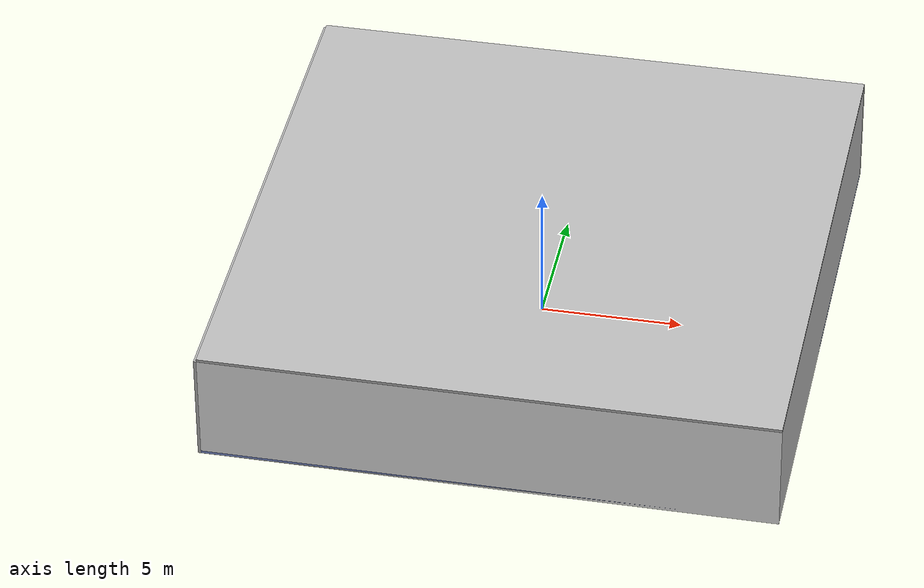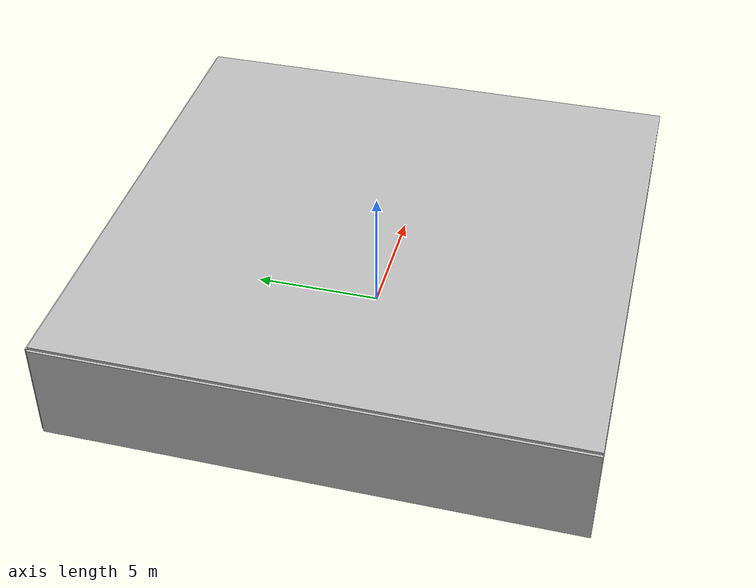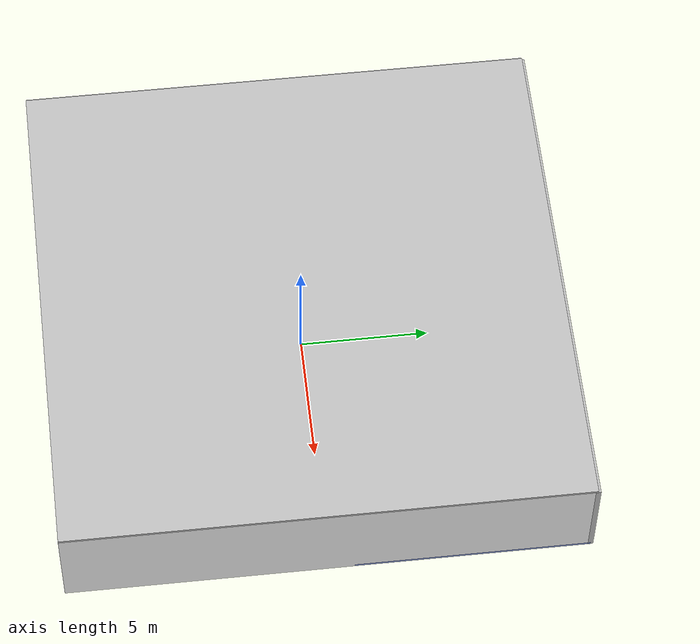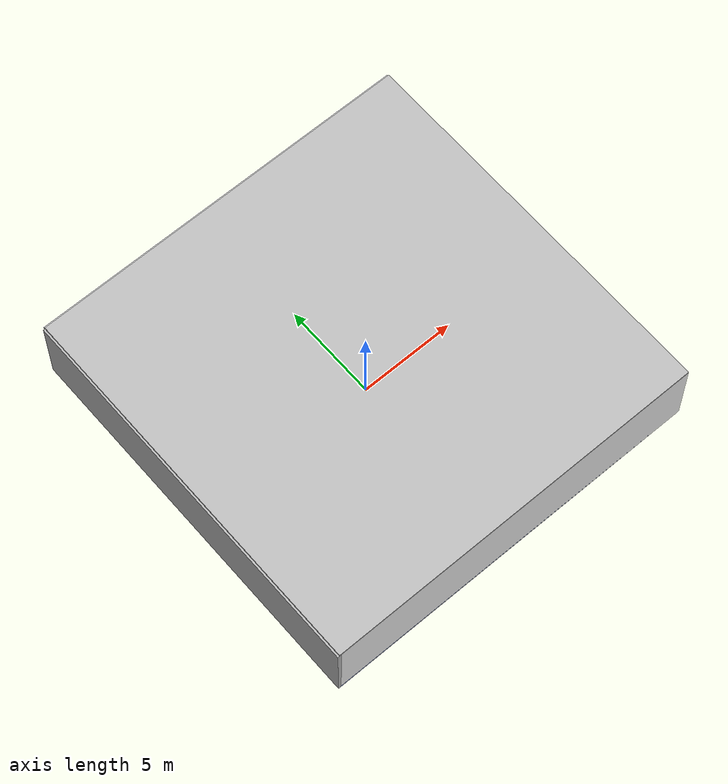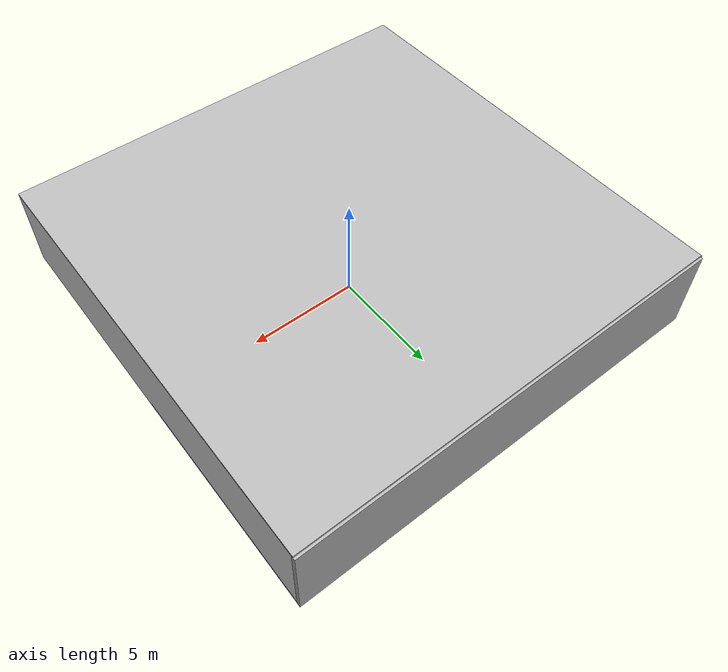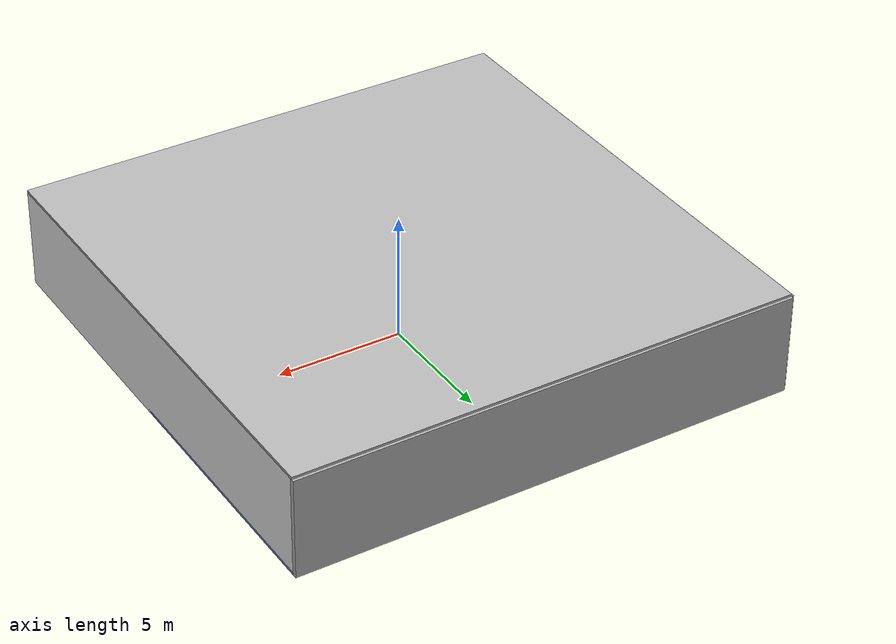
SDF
<sdf version="1.4">
 <world name="default">
  <physics type="ode">
   <max_step_size>0.001</max_step_size>
   <real_time_factor>1</real_time_factor>
   <real_time_update_rate>1000</real_time_update_rate>
   <gravity>0 0 -9.8</gravity>
  </physics>
  <scene><ambient>0.4 0.4 0.4 1</ambient><background>0.7 0.7 0.7 1</background><shadows>1</shadows></scene>
  <model name="Surrounding">
   <static>1</static>
   <link name="Ceiling">
    <collision name="Ceiling_Collision"><geometry><box><size>20 20 0.1</size></box></geometry></collision>
    <visual name="Ceiling_Visual">
     <geometry><box><size>20 20 0.1</size></box></geometry>
     <material>
      <script><uri>file://media/materials/scripts/gazebo.material</uri><name>Gazebo/JointAnchor</name></script>
     </material>
    </visual>
    <pose>0 0 4.05 0 0 0</pose>
   </link>
   <link name="Wall_South">
    <collision name="Wall_South_Collision">
     <geometry><box><size>20 0 4</size></box></geometry>
     <pose>0 0 2 0 -0 0</pose>
    </collision>
    <visual name="Wall_South_Visual">
     <pose>0 0 2 0 -0 0</pose>
     <geometry><box><size>20 0 4</size></box></geometry>
     <material>
      <script><uri>file://media/materials/scripts/gazebo.material</uri><name>Gazebo/White</name></script>
     </material>
    </visual>
    <velocity_decay><linear>0</linear><angular>0</angular></velocity_decay>
    <pose>0 -10 0 0 -0 0</pose>
   </link>
   <link name="Wall_East">
    <collision name="Wall_21_Collision">
     <geometry><box><size>20 0 4</size></box></geometry>
     <pose>0 0 2 0 -0 0</pose>
    </collision>
    <visual name="Wall_21_Visual">
     <pose>0 0 2 0 -0 0</pose>
     <geometry><box><size>20 0 4</size></box></geometry>
     <material>
      <script><uri>file://media/materials/scripts/gazebo.material</uri><name>Gazebo/White</name></script>
     </material>
    </visual>
    <velocity_decay><linear>0</linear><angular>0</angular></velocity_decay>
    <pose>10 0 0 0 -0 1.5708</pose>
   </link>
   <link name="Wall_North">
    <collision name="Wall_22_Collision">
     <geometry><box><size>20 0.2 4</size></box></geometry>
     <pose>0 0 2 0 -0 0</pose>
    </collision>
    <visual name="Wall_22_Visual">
     <pose>0 0 2 0 -0 0</pose>
     <geometry><box><size>20 0.2 4</size></box></geometry>
     <material>
      <script><uri>file://media/materials/scripts/gazebo.material</uri><name>Gazebo/JointAnchor</name></script>
     </material>
    </visual>
    <velocity_decay><linear>0</linear><angular>0</angular></velocity_decay>
    <pose>0 10 0 0 -0 0</pose>
   </link>
   <link name="Wall_West">
    <collision name="Wall_23_Collision">
     <geometry><box><size>20 0.2 4</size></box></geometry>
     <pose>0 0 2 0 -0 0</pose>
    </collision>
    <visual name="Wall_23_Visual">
     <pose>0 0 2 0 -0 0</pose>
     <geometry><box><size>20 0.2 4</size></box></geometry>
     <material>
      <script><uri>file://media/materials/scripts/gazebo.material</uri><name>Gazebo/LightOff</name></script>
     </material>
    </visual>
    <velocity_decay><linear>0</linear><angular>0</angular></velocity_decay>
    <pose>-10 0 0 0 0 -1.5708</pose>
   </link>
   <link name="Ground_link">
    <collision name="collision">
     <pose>0 0 .05 0 -0 0</pose>
     <geometry><box><size>20 20 0.1</size></box></geometry>
    </collision>
    <visual name="visual">
     <pose>0 0 .05 0 -0 0</pose>
     <geometry><box><size>20 20 0.1</size></box></geometry>
     <material>
      <script><uri>file://media/materials/scripts/gazebo.material</uri><name>Gazebo/BlueTransparent</name></script>
     </material>
    </visual>
   </link>
   <static>1</static>
  </model>
  <spherical_coordinates>
   <surface_model>EARTH_WGS84</surface_model>
   <latitude_deg>0</latitude_deg>
   <longitude_deg>0</longitude_deg>
   <elevation>0</elevation>
   <heading_deg>0</heading_deg>
  </spherical_coordinates>
  <light name="lightball_0" type="diffuse">
   <diffuse>0.8 0.8 0.8 1</diffuse>
   <specular>0.2 0.2 0.2 1</specular>
   <attenuation>
    <range>100</range>
    <constant>0.7</constant>
    <linear>0.01</linear>
    <quadratic>0.001</quadratic>
   </attenuation>
   <direction>-0.5 0.1 -0.9</direction>
   <pose>9.09368680687 -1.39343294965 3.86672728746 0 0 0</pose>
  </light>
  <light name="lightball_1" type="diffuse">
   <diffuse>0.8 0.8 0.8 1</diffuse>
   <specular>0.2 0.2 0.2 1</specular>
   <attenuation>
    <range>100</range>
    <constant>0.7</constant>
    <linear>0.01</linear>
    <quadratic>0.001</quadratic>
   </attenuation>
   <direction>-0.5 0.1 -0.9</direction>
   <pose>-8.49662496077 -0.348125963006 1.99949003707 0 0 0</pose>
  </light>
  <light name="lightball_2" type="diffuse">
   <diffuse>0.8 0.8 0.8 1</diffuse>
   <specular>0.2 0.2 0.2 1</specular>
   <attenuation>
    <range>100</range>
    <constant>0.7</constant>
    <linear>0.01</linear>
    <quadratic>0.001</quadratic>
   </attenuation>
   <direction>-0.5 0.1 -0.9</direction>
   <pose>-3.92650019172 -3.91574640894 2.0716308317 0 0 0</pose>
  </light>
  <light name="lightball_3" type="diffuse">
   <diffuse>0.8 0.8 0.8 1</diffuse>
   <specular>0.2 0.2 0.2 1</specular>
   <attenuation>
    <range>100</range>
    <constant>0.7</constant>
    <linear>0.01</linear>
    <quadratic>0.001</quadratic>
   </attenuation>
   <direction>-0.5 0.1 -0.9</direction>
   <pose>7.68489823823 -9.0154806801 3.70986000631 0 0 0</pose>
  </light>
  <light name="lightball_4" type="diffuse">
   <diffuse>0.8 0.8 0.8 1</diffuse>
   <specular>0.2 0.2 0.2 1</specular>
   <attenuation>
    <range>100</range>
    <constant>0.7</constant>
    <linear>0.01</linear>
    <quadratic>0.001</quadratic>
   </attenuation>
   <direction>-0.5 0.1 -0.9</direction>
   <pose>-3.39801850647 -5.07775240505 2.24940329956 0 0 0</pose>
  </light>
  <light name="lightball_5" type="diffuse">
   <diffuse>0.8 0.8 0.8 1</diffuse>
   <specular>0.2 0.2 0.2 1</specular>
   <attenuation>
    <range>100</range>
    <constant>0.7</constant>
    <linear>0.01</linear>
    <quadratic>0.001</quadratic>
   </attenuation>
   <direction>-0.5 0.1 -0.9</direction>
   <pose>7.58541755534 -9.25357975677 0.880952261121 0 0 0</pose>
  </light>
  <light name="lightball_6" type="diffuse">
   <diffuse>0.8 0.8 0.8 1</diffuse>
   <specular>0.2 0.2 0.2 1</specular>
   <attenuation>
    <range>100</range>
    <constant>0.7</constant>
    <linear>0.01</linear>
    <quadratic>0.001</quadratic>
   </attenuation>
   <direction>-0.5 0.1 -0.9</direction>
   <pose>6.07334025008 -3.02416222735 2.8307361468 0 0 0</pose>
  </light>
  <light name="lightball_7" type="diffuse">
   <diffuse>0.8 0.8 0.8 1</diffuse>
   <specular>0.2 0.2 0.2 1</specular>
   <attenuation>
    <range>100</range>
    <constant>0.7</constant>
    <linear>0.01</linear>
    <quadratic>0.001</quadratic>
   </attenuation>
   <direction>-0.5 0.1 -0.9</direction>
   <pose>3.13769602792 1.04151401912 1.75816936291 0 0 0</pose>
  </light>
  <light name="lightball_8" type="diffuse">
   <diffuse>0.8 0.8 0.8 1</diffuse>
   <specular>0.2 0.2 0.2 1</specular>
   <attenuation>
    <range>100</range>
    <constant>0.7</constant>
    <linear>0.01</linear>
    <quadratic>0.001</quadratic>
   </attenuation>
   <direction>-0.5 0.1 -0.9</direction>
   <pose>1.60554667364 -7.97367394178 0.626646235241 0 0 0</pose>
  </light>
  <light name="lightball_9" type="diffuse">
   <diffuse>0.8 0.8 0.8 1</diffuse>
   <specular>0.2 0.2 0.2 1</specular>
   <attenuation>
    <range>100</range>
    <constant>0.7</constant>
    <linear>0.01</linear>
    <quadratic>0.001</quadratic>
   </attenuation>
   <direction>-0.5 0.1 -0.9</direction>
   <pose>-9.9667534029 5.74186459889 2.78255772641 0 0 0</pose>
  </light>
  <include>
   <uri>model://robocup_3Dsim_goal</uri>
   <pose>-6.54906617393 6.49793203918 0 0 0 1.54395630486</pose>
  </include>
  <include>
   <uri>model://robocup_3Dsim_goal</uri>
   <pose>-4.68938848206 0.952077830812 0 0 0 2.29193618277</pose>
  </include>
  <include><uri>model://cabinet</uri><pose>1.47674411945 -5.64282826418 0 0 0 2.8477825186</pose></include>
  <include><uri>model://cabinet</uri><pose>0.426274022858 8.51742618119 0 0 0 0.0471775925816</pose></include>
  <include>
   <uri>model://robocup_3Dsim_goal</uri>
   <pose>3.78590991801 5.39428072135 0 0 0 1.72697118127</pose>
  </include>
  <include>
   <uri>model://robocup_3Dsim_goal</uri>
   <pose>8.51099652708 -1.55457409577 0 0 0 1.99323785263</pose>
  </include>
 </world>
</sdf>

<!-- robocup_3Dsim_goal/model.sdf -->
<sdf version="1.5">
  <model name="robocup_3d_goal">
    <static>true</static>
    <link name="left_post">
      <pose>0 1.05 0.45 0 0 0</pose>
      <collision name="collision">
        <geometry>
          <cylinder>
            <radius>0.05</radius>
            <length>0.9</length>
          </cylinder>
        </geometry>
      </collision>
      <visual name="visual">
        <geometry>
          <cylinder>
            <radius>0.05</radius>
            <length>0.9</length>
          </cylinder>
        </geometry>
        <material>
          <script>
            <uri>file://media/materials/scripts/gazebo.material</uri>
            <name>Gazebo/ZincYellow</name>
          </script>
        </material>
      </visual>
    </link>
    <link name="left_support_horiz_lower">
      <pose>0.30 1.05 0.01 0 0 0</pose>
      <collision name="collision">
        <geometry>
          <box>
            <size>0.50 0.02 0.02</size>
          </box>
        </geometry>
      </collision>
      <visual name="visual">
        <geometry>
          <box>
            <size>0.50 0.02 0.02</size>
          </box>
        </geometry>
        <material>
          <script>
            <uri>file://media/materials/scripts/gazebo.material</uri>
            <name>Gazebo/White</name>
          </script>
        </material>
      </visual>
    </link>
    <link name="left_support_horiz_upper">
      <pose>0.30 1.05 0.79 0 0 0</pose>
      <collision name="collision">
        <geometry>
          <box>
            <size>0.50 0.02 0.02</size>
          </box>
        </geometry>
      </collision>
      <visual name="visual">
        <geometry>
          <box>
            <size>0.50 0.02 0.02</size>
          </box>
        </geometry>
        <material>
          <script>
            <uri>file://media/materials/scripts/gazebo.material</uri>
            <name>Gazebo/White</name>
          </script>
        </material>
      </visual>
    </link>
    <link name="left_support_vertical">
      <pose>0.56 1.05 0.4 0 1.5708 0</pose>
      <collision name="collision">
        <geometry>
          <box>
            <size>0.80 0.02 0.02</size>
          </box>
        </geometry>
      </collision>
      <visual name="visual">
        <geometry>
          <box>
            <size>0.80 0.02 0.02</size>
          </box>
        </geometry>
        <material>
          <script>
            <uri>file://media/materials/scripts/gazebo.material</uri>
            <name>Gazebo/White</name>
          </script>
        </material>
      </visual>
    </link>
    <link name="right_support_horiz_lower">
      <pose>0.30 -1.05 0.01 0 0 0</pose>
      <collision name="collision">
        <geometry>
          <box>
            <size>0.50 0.02 0.02</size>
          </box>
        </geometry>
      </collision>
      <visual name="visual">
        <geometry>
          <box>
            <size>0.50 0.02 0.02</size>
          </box>
        </geometry>
        <material>
          <script>
            <uri>file://media/materials/scripts/gazebo.material</uri>
            <name>Gazebo/White</name>
          </script>
        </material>
      </visual>
    </link>
    <link name="right_support_horiz_upper">
      <pose>0.30 -1.05 0.79 0 0 0</pose>
      <collision name="collision">
        <geometry>
          <box>
            <size>0.50 0.02 0.02</size>
          </box>
        </geometry>
      </collision>
      <visual name="visual">
        <geometry>
          <box>
            <size>0.50 0.02 0.02</size>
          </box>
        </geometry>
        <material>
          <script>
            <uri>file://media/materials/scripts/gazebo.material</uri>
            <name>Gazebo/White</name>
          </script>
        </material>
      </visual>
    </link>
    <link name="right_support_vertical">
      <pose>0.56 -1.05 0.4 0 1.5708 0</pose>
      <collision name="collision">
        <geometry>
          <box>
            <size>0.80 0.02 0.02</size>
          </box>
        </geometry>
      </collision>
      <visual name="visual">
        <geometry>
          <box>
            <size>0.80 0.02 0.02</size>
          </box>
        </geometry>
        <material>
          <script>
            <uri>file://media/materials/scripts/gazebo.material</uri>
            <name>Gazebo/White</name>
          </script>
        </material>
      </visual>
    </link>
    <link name="center_support_horiz_lower">
      <pose>0.56 0 0.01 0 1.5708 0</pose>
      <collision name="collision">
        <geometry>
          <box>
            <size>0.02 2.08 0.02</size>
          </box>
        </geometry>
      </collision>
      <visual name="visual">
        <geometry>
          <box>
            <size>0.02 2.08 0.02</size>
          </box>
        </geometry>
        <material>
          <script>
            <uri>file://media/materials/scripts/gazebo.material</uri>
            <name>Gazebo/White</name>
          </script>
        </material>
      </visual>
    </link>
    <link name="center_support_horiz_upper">
      <pose>0.56 0 0.79 0 1.5708 0</pose>
      <collision name="collision">
        <geometry>
          <box>
            <size>0.02 2.08 0.02</size>
          </box>
        </geometry>
      </collision>
      <visual name="visual">
        <geometry>
          <box>
            <size>0.02 2.08 0.02</size>
          </box>
        </geometry>
        <material>
          <script>
            <uri>file://media/materials/scripts/gazebo.material</uri>
            <name>Gazebo/White</name>
          </script>
        </material>
      </visual>
    </link>
    <link name="right_post">
      <pose>0 -1.05 0.45 0 0 0</pose>
      <collision name="collision">
        <geometry>
          <cylinder>
            <radius>0.05</radius>
            <length>0.9</length>
          </cylinder>
        </geometry>
      </collision>
      <visual name="visual">
        <geometry>
          <cylinder>
            <radius>0.05</radius>
            <length>0.9</length>
          </cylinder>
        </geometry>
        <material>
          <script>
            <uri>file://media/materials/scripts/gazebo.material</uri>
            <name>Gazebo/ZincYellow</name>
          </script>
        </material>
      </visual>
    </link>
    <link name="crossbar">
      <pose>0 0 0.85 1.57 1.57 0</pose>
      <collision name="collision">
        <geometry>
          <cylinder>
            <radius>0.05</radius>
            <length>2.0</length>
          </cylinder>
        </geometry>
      </collision>
      <visual name="visual">
        <geometry>
          <cylinder>
            <radius>0.05</radius>
            <length>2.0</length>
          </cylinder>
        </geometry>
        <material>
          <script>
            <uri>file://media/materials/scripts/gazebo.material</uri>
            <name>Gazebo/ZincYellow</name>
          </script>
        </material>
      </visual>
    </link>
    <link name="center_net">
      <pose>0.56 0 0.40 0 0 0</pose>
      <collision name="collision">
        <geometry>
          <box>
            <size>0.01 2.1 0.80</size>
          </box>
        </geometry>
      </collision>
      <visual name="visual">
        <geometry>
          <box>
            <size>0.01 2.1 0.80</size>
          </box>
        </geometry>
        <material>
          <script>
            <uri>model://../model_source/models/robocup09_spl_field/materials/scripts/</uri>
            <uri>model://../model_source/models/robocup09_spl_field/materials/textures/</uri>
            <name>RoboCup/Net</name>
          </script>
        </material>
      </visual>
    </link>
    <link name="left_net">
      <pose>0.30 1.05 0.40 0 0 0</pose>
      <collision name="collision">
        <geometry>
          <box>
            <size>0.50 0.01 0.76</size>
          </box>
        </geometry>
      </collision>
      <visual name="visual">
        <geometry>
          <box>
            <size>0.50 0.01 0.76</size>
          </box>
        </geometry>
        <material>
          <script>
            <uri>model://../model_source/models/robocup09_spl_field/materials/scripts/</uri>
            <uri>model://../model_source/models/robocup09_spl_field/materials/textures/</uri>
            <name>RoboCup/Net</name>
          </script>
        </material>
      </visual>
    </link>
    <link name="right_net">
      <pose>0.30 -1.05 0.40 0 0 0</pose>
      <collision name="collision">
        <geometry>
          <box>
            <size>0.50 0.01 0.76</size>
          </box>
        </geometry>
      </collision>
      <visual name="visual">
        <geometry>
          <box>
            <size>0.50 0.01 0.76</size>
          </box>
        </geometry>
        <material>
          <script>
            <uri>model://../model_source/models/robocup09_spl_field/materials/scripts/</uri>
            <uri>model://../model_source/models/robocup09_spl_field/materials/textures/</uri>
            <name>RoboCup/Net</name>
          </script>
        </material>
      </visual>
    </link>
  </model>
</sdf>

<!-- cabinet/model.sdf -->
<sdf version="1.5">
  <model name="cabinet">
    <static>true</static>
    <link name="cabinet_bottom_plate">
      <inertial>
        <pose>0 0 -1 0 0 0</pose>
        <inertia>
          <ixx>2.050000</ixx>
          <ixy>0</ixy>
          <ixz>0</ixz>
          <iyy>2.050000</iyy>
          <iyz>0</iyz>
          <izz>2.050000</izz>
        </inertia>
        <mass>25.000000</mass>
      </inertial>
      <collision name="cabinet_bottom_plate_geom">
        <pose>0 0 0.010000 0 0 0</pose>
        <geometry>
          <box>
            <size>0.450000 0.450000 0.020000</size>
          </box>
        </geometry>
      </collision>
      <visual name="cabinet_bottom_plate_geom_visual">
        <pose>0 0 0.010000 0 0 0</pose>
        <geometry>
          <box>
            <size>0.450000 0.450000 0.020000</size>
          </box>
        </geometry>
        <material>
          <script>
            <uri>model://media/materials/scripts/gazebo.material</uri>
            <name>Gazebo/Wood</name>
          </script>
        </material>
      </visual>
      <collision name="cabinet_bottom_plate_geom_cabinet_back_plate">
        <pose>0.235000 0 0.510000 0 0 0</pose>
        <geometry>
          <box>
            <size>0.020000 0.450000 1.020000</size>
          </box>
        </geometry>
      </collision>
      <visual name="cabinet_bottom_plate_geom_cabinet_back_plate_visual">
        <pose>0.235000 0 0.510000 0 0 0</pose>
        <geometry>
          <box>
            <size>0.020000 0.450000 1.020000</size>
          </box>
        </geometry>
        <material>
          <script>
            <uri>model://media/materials/scripts/gazebo.material</uri>
            <name>Gazebo/Wood</name>
          </script>
        </material>
      </visual>
      <collision name="cabinet_bottom_plate_geom_cabinet_left_plate">
        <pose>0 0.235000 0.510000 0 0 0</pose>
        <geometry>
          <box>
            <size>0.450000 0.020000 1.020000</size>
          </box>
        </geometry>
      </collision>
      <visual name="cabinet_bottom_plate_geom_cabinet_left_plate_visual">
        <pose>0 0.235000 0.510000 0 0 0</pose>
        <geometry>
          <box>
            <size>0.450000 0.020000 1.020000</size>
          </box>
        </geometry>
        <material>
          <script>
            <uri>model://media/materials/scripts/gazebo.material</uri>
            <name>Gazebo/Wood</name>
          </script>
        </material>
      </visual>
      <collision name="cabinet_bottom_plate_geom_cabinet_middle_plate">
        <pose>0 0 0.510000 0 0 0</pose>
        <geometry>
          <box>
            <size>0.450000 0.450000 0.020000</size>
          </box>
        </geometry>
      </collision>
      <visual name="cabinet_bottom_plate_geom_cabinet_middle_plate_visual">
        <pose>0 0 0.510000 0 0 0</pose>
        <geometry>
          <box>
            <size>0.450000 0.450000 0.020000</size>
          </box>
        </geometry>
        <material>
          <script>
            <uri>model://media/materials/scripts/gazebo.material</uri>
            <name>Gazebo/Wood</name>
          </script>
        </material>
      </visual>
      <collision name="cabinet_bottom_plate_geom_cabinet_right_plate">
        <pose>0 -0.235000 0.510000 0 0 0</pose>
        <geometry>
          <box>
            <size>0.450000 0.020000 1.020000</size>
          </box>
        </geometry>
      </collision>
      <visual name="cabinet_bottom_plate_geom_cabinet_right_plate_visual">
        <pose>0 -0.235000 0.510000 0 0 0</pose>
        <geometry>
          <box>
            <size>0.450000 0.020000 1.020000</size>
          </box>
        </geometry>
        <material>
          <script>
            <uri>model://media/materials/scripts/gazebo.material</uri>
            <name>Gazebo/Wood</name>
          </script>
        </material>
      </visual>
      <collision name="cabinet_bottom_plate_geom_cabinet_top_plate">
        <pose>0 0 1.010000 0 0 0</pose>
        <geometry>
          <box>
            <size>0.450000 0.450000 0.020000</size>
          </box>
        </geometry>
      </collision>
      <visual name="cabinet_bottom_plate_geom_cabinet_top_plate_visual">
        <pose>0 0 1.010000 0 0 0</pose>
        <geometry>
          <box>
            <size>0.450000 0.450000 0.020000</size>
          </box>
        </geometry>
        <material>
          <script>
            <uri>model://media/materials/scripts/gazebo.material</uri>
            <name>Gazebo/Wood</name>
          </script>
        </material>
      </visual>
    </link>
  </model>
</sdf>
